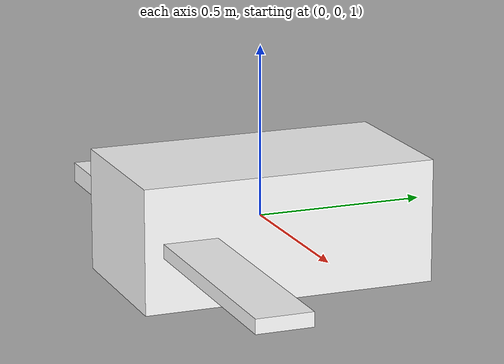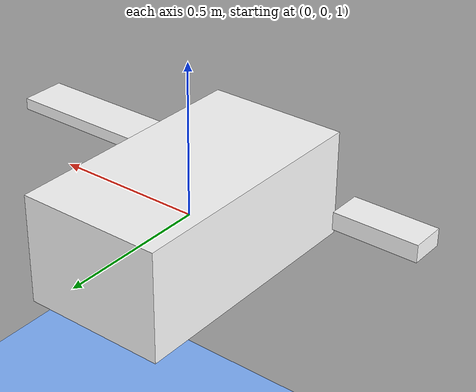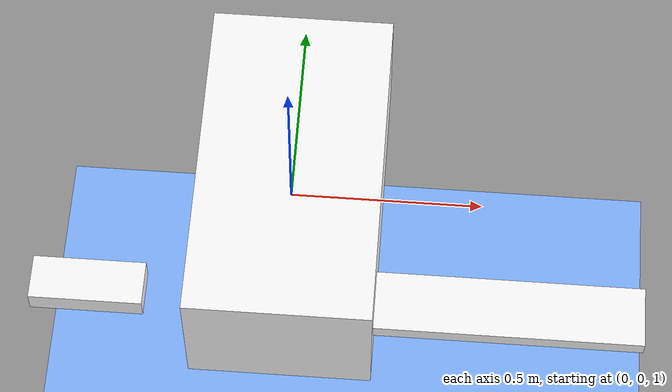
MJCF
<mujoco>
    <worldbody>
        <light diffuse=".5 .5 .5" pos="0 0 2" dir="0 -1 0" />
        <geom type="plane" size="10 10 0.1" rgba="0.5 0.7 1 1" />

        <body name="flappybird" pos="0 0 1" euler="0 0 0">
            <joint type="free" axis="0 0 0" pos="0 0 0" />
            <body name="body" pos="0 0 0" euler="0 0 0">
                <geom type="box" size="0.23809627352346155 0.4353184998936045 0.18128793114241923" rgba="1 1 1 1" mass="0.009080109494902665" />
            </body>

            <body name="wing1" pos=".5 -.3 0" euler="0 -90 0">
                <joint name="joint1" type="hinge" axis="0 1 0" pos="0 0 .25" range="-45 45" />
                <geom type="box" size="0.02054093476261739 0.08025764689592012 0.42672620064289823" rgba="1 1 1 1" mass="0.539928510392383" />
            </body>

            <body name="wing2" pos="-.5 -.3 0" euler="0 90 0">
                <joint name="joint2" type="hinge" axis="0 1 0" pos="0 0 .25" range="-45 45" />
                <geom type="box" size="0.029882752617260984 0.058756797200315146 0.14569388044341677" rgba="1 1 1 1" mass="0.4336869625215306" />
            </body>

        </body>
    </worldbody>

    <actuator>
        <motor joint="joint1" name="m1" gear="10.187536474025965" ctrllimited="true" ctrlrange="-5 5" />
        <motor joint="joint2" name="m2" gear="21.157848098320397" ctrllimited="true" ctrlrange="-5 5" />

</actuator>

</mujoco>
